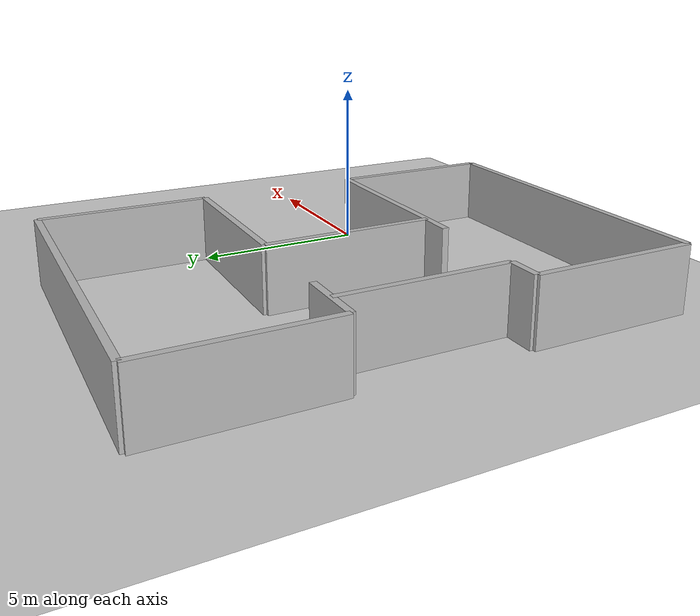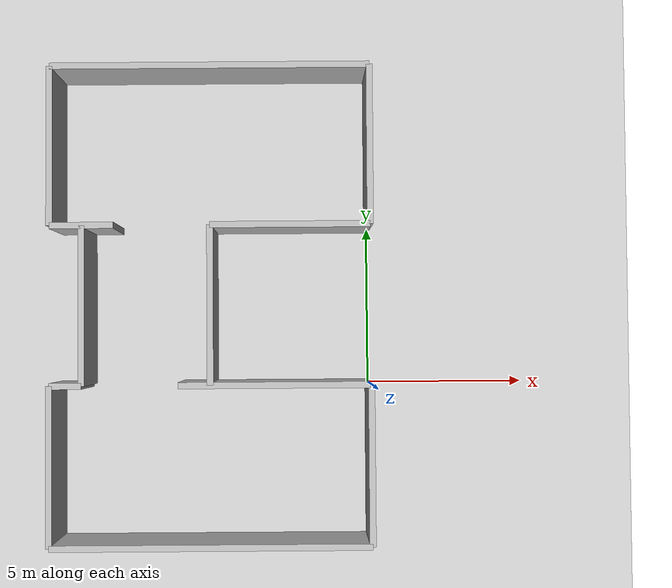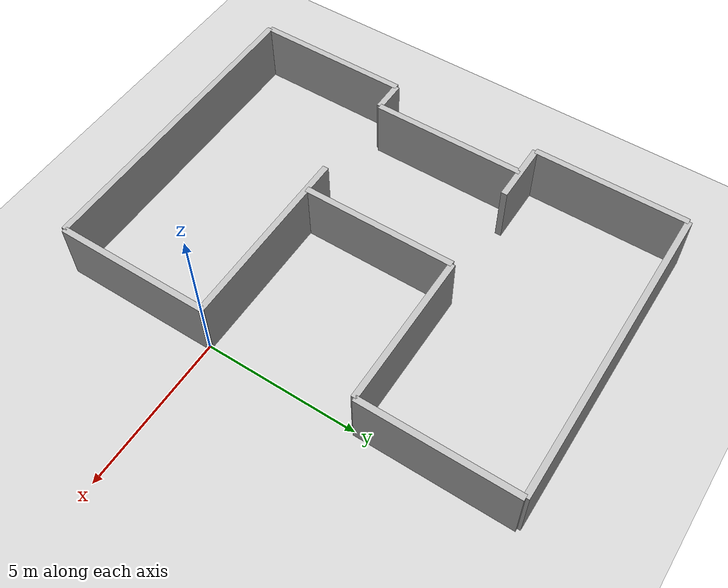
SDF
<sdf version="1.4">
 <world name="default">
  <physics type="ode">
   <gravity>0 0 -9.81</gravity>
   <ode>
    <solver><type>quick</type><iters>20</iters><sor>1.0</sor></solver>
    <constraints>
     <cfm>0.0</cfm>
     <erp>0.2</erp>
     <contact_max_correcting_vel>100.0</contact_max_correcting_vel>
     <contact_surface_layer>0.0</contact_surface_layer>
    </constraints>
   </ode>
   <real_time_update_rate>1000</real_time_update_rate>
   <max_step_size>0.001</max_step_size>
  </physics>
  <include><uri>model://sun</uri></include>
  <include><uri>model://ground_plane</uri></include>
  <model name="wall_1_model">
   <pose>-5 -5 1 0 0 0</pose>
   <static>true</static>
   <link name="wall_1_body">
    <inertial>
     <mass>1.0</mass>
     <inertia><ixx>1.0</ixx><ixy>0.0</ixy><ixz>0.0</ixz><iyy>1.0</iyy><iyz>0.0</iyz><izz>1.0</izz></inertia>
    </inertial>
    <collision name="collision"><geometry><box><size>10 0.2 2</size></box></geometry></collision>
    <visual name="visual"><geometry><box><size>10 0.2 2</size></box></geometry></visual>
   </link>
  </model>
  <model name="wall_2_model">
   <pose>-5 10 1 0 0 0</pose>
   <static>true</static>
   <link name="wall_2_body">
    <inertial>
     <mass>1.0</mass>
     <inertia><ixx>1.0</ixx><ixy>0.0</ixy><ixz>0.0</ixz><iyy>1.0</iyy><iyz>0.0</iyz><izz>1.0</izz></inertia>
    </inertial>
    <collision name="collision"><geometry><box><size>10 0.2 2</size></box></geometry></collision>
    <visual name="visual"><geometry><box><size>10 0.2 2</size></box></geometry></visual>
   </link>
  </model>
  <model name="wall_3_model">
   <pose>-10 -2.5 1 0 0 0</pose>
   <static>true</static>
   <link name="wall_3_body">
    <inertial>
     <mass>1.0</mass>
     <inertia><ixx>1.0</ixx><ixy>0.0</ixy><ixz>0.0</ixz><iyy>1.0</iyy><iyz>0.0</iyz><izz>1.0</izz></inertia>
    </inertial>
    <collision name="collision"><geometry><box><size>0.2 5 2</size></box></geometry></collision>
    <visual name="visual"><geometry><box><size>0.2 5 2</size></box></geometry></visual>
   </link>
  </model>
  <model name="wall_4_model">
   <pose>0 -2.5 1 0 0 0</pose>
   <static>true</static>
   <link name="wall_4_body">
    <inertial>
     <mass>1.0</mass>
     <inertia><ixx>1.0</ixx><ixy>0.0</ixy><ixz>0.0</ixz><iyy>1.0</iyy><iyz>0.0</iyz><izz>1.0</izz></inertia>
    </inertial>
    <collision name="collision"><geometry><box><size>0.2 5 2</size></box></geometry></collision>
    <visual name="visual"><geometry><box><size>0.2 5 2</size></box></geometry></visual>
   </link>
  </model>
  <model name="wall_5_model">
   <pose>-9.0 5 1 0 0 0</pose>
   <static>true</static>
   <link name="wall_5_body">
    <inertial>
     <mass>1.0</mass>
     <inertia><ixx>1.0</ixx><ixy>0.0</ixy><ixz>0.0</ixz><iyy>1.0</iyy><iyz>0.0</iyz><izz>1.0</izz></inertia>
    </inertial>
    <collision name="collision"><geometry><box><size>2.0 0.2 2</size></box></geometry></collision>
    <visual name="visual"><geometry><box><size>2.0 0.2 2</size></box></geometry></visual>
   </link>
  </model>
  <model name="wall_6_model">
   <pose>-2.5 5 1 0 0 0</pose>
   <static>true</static>
   <link name="wall_6_body">
    <inertial>
     <mass>1.0</mass>
     <inertia><ixx>1.0</ixx><ixy>0.0</ixy><ixz>0.0</ixz><iyy>1.0</iyy><iyz>0.0</iyz><izz>1.0</izz></inertia>
    </inertial>
    <collision name="collision"><geometry><box><size>5 0.2 2</size></box></geometry></collision>
    <visual name="visual"><geometry><box><size>5 0.2 2</size></box></geometry></visual>
   </link>
  </model>
  <model name="wall_7_model">
   <pose>-9.5 0 1 0 0 0</pose>
   <static>true</static>
   <link name="wall_7_body">
    <inertial>
     <mass>1.0</mass>
     <inertia><ixx>1.0</ixx><ixy>0.0</ixy><ixz>0.0</ixz><iyy>1.0</iyy><iyz>0.0</iyz><izz>1.0</izz></inertia>
    </inertial>
    <collision name="collision"><geometry><box><size>1.0 0.2 2</size></box></geometry></collision>
    <visual name="visual"><geometry><box><size>1.0 0.2 2</size></box></geometry></visual>
   </link>
  </model>
  <model name="wall_8_model">
   <pose>-3 0 1 0 0 0</pose>
   <static>true</static>
   <link name="wall_8_body">
    <inertial>
     <mass>1.0</mass>
     <inertia><ixx>1.0</ixx><ixy>0.0</ixy><ixz>0.0</ixz><iyy>1.0</iyy><iyz>0.0</iyz><izz>1.0</izz></inertia>
    </inertial>
    <collision name="collision"><geometry><box><size>6 0.2 2</size></box></geometry></collision>
    <visual name="visual"><geometry><box><size>6 0.2 2</size></box></geometry></visual>
   </link>
  </model>
  <model name="wall_9_model">
   <pose>-10 7.5 1 0 0 0</pose>
   <static>true</static>
   <link name="wall_9_body">
    <inertial>
     <mass>1.0</mass>
     <inertia><ixx>1.0</ixx><ixy>0.0</ixy><ixz>0.0</ixz><iyy>1.0</iyy><iyz>0.0</iyz><izz>1.0</izz></inertia>
    </inertial>
    <collision name="collision"><geometry><box><size>0.2 5 2</size></box></geometry></collision>
    <visual name="visual"><geometry><box><size>0.2 5 2</size></box></geometry></visual>
   </link>
  </model>
  <model name="wall_10_model">
   <pose>0 7.5 1 0 0 0</pose>
   <static>true</static>
   <link name="wall_10_body">
    <inertial>
     <mass>1.0</mass>
     <inertia><ixx>1.0</ixx><ixy>0.0</ixy><ixz>0.0</ixz><iyy>1.0</iyy><iyz>0.0</iyz><izz>1.0</izz></inertia>
    </inertial>
    <collision name="collision"><geometry><box><size>0.2 5 2</size></box></geometry></collision>
    <visual name="visual"><geometry><box><size>0.2 5 2</size></box></geometry></visual>
   </link>
  </model>
  <model name="wall_11_model">
   <pose>-5 2.5 1 0 0 0</pose>
   <static>true</static>
   <link name="wall_11_body">
    <inertial>
     <mass>1.0</mass>
     <inertia><ixx>1.0</ixx><ixy>0.0</ixy><ixz>0.0</ixz><iyy>1.0</iyy><iyz>0.0</iyz><izz>1.0</izz></inertia>
    </inertial>
    <collision name="collision"><geometry><box><size>0.2 5 2</size></box></geometry></collision>
    <visual name="visual"><geometry><box><size>0.2 5 2</size></box></geometry></visual>
   </link>
  </model>
  <model name="wall_12_model">
   <pose>-9 2.5 1 0 0 0</pose>
   <static>true</static>
   <link name="wall_12_body">
    <inertial>
     <mass>1.0</mass>
     <inertia><ixx>1.0</ixx><ixy>0.0</ixy><ixz>0.0</ixz><iyy>1.0</iyy><iyz>0.0</iyz><izz>1.0</izz></inertia>
    </inertial>
    <collision name="collision"><geometry><box><size>0.2 5 2</size></box></geometry></collision>
    <visual name="visual"><geometry><box><size>0.2 5 2</size></box></geometry></visual>
   </link>
  </model>
 </world>
</sdf>
